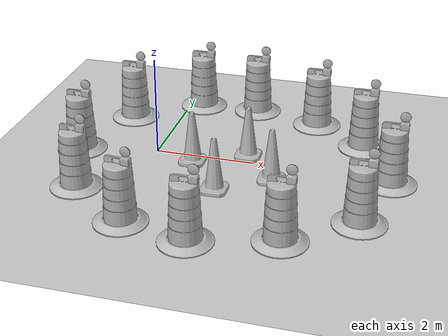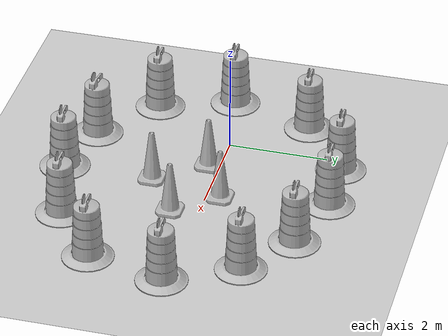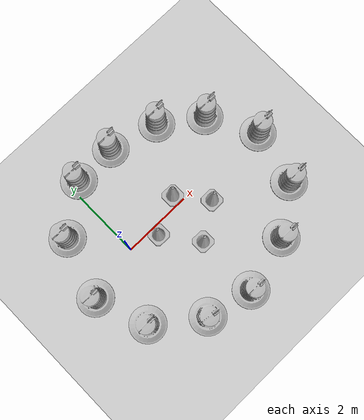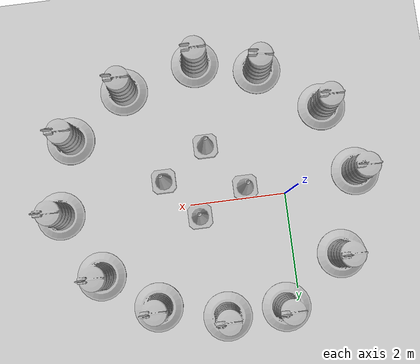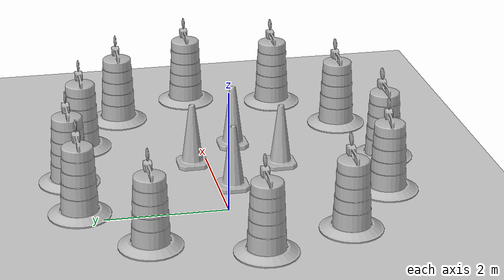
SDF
<sdf version="1.7">
 <world name="default">
  <light name="sun" type="directional">
   <pose>0 0 10 0 -0 0</pose>
   <diffuse>0.8 0.8 0.8 1</diffuse>
   <specular>0.2 0.2 0.2 1</specular>
   <attenuation>
    <range>1000</range>
    <constant>0.9</constant>
    <linear>0.01</linear>
    <quadratic>0.001</quadratic>
   </attenuation>
   <direction>-0.5 0.1 -0.9</direction>
   <spot><inner_angle>0</inner_angle><outer_angle>0</outer_angle><falloff>0</falloff></spot>
  </light>
  <model name="ground_plane">
   <static>1</static>
   <link name="link">
    <collision name="collision">
     <geometry><plane><normal>0 0 1</normal><size>100 100</size></plane></geometry>
     <surface><friction><ode><mu>100</mu><mu2>50</mu2></ode></friction></surface>
    </collision>
    <visual name="visual">
     <cast_shadows>0</cast_shadows>
     <geometry><plane><normal>0 0 1</normal><size>100 100</size></plane></geometry>
     <material>
      <script><uri>file://media/materials/scripts/gazebo.material</uri><name>Gazebo/Grey</name></script>
     </material>
    </visual>
   </link>
  </model>
  <gravity>0 0 -9.8</gravity>
  <magnetic_field>6e-06 2.3e-05 -4.2e-05</magnetic_field>
  <atmosphere type="adiabatic"/>
  <physics type="ode">
   <max_step_size>0.001</max_step_size>
   <real_time_factor>1</real_time_factor>
   <real_time_update_rate>1000</real_time_update_rate>
  </physics>
  <scene><ambient>0.4 0.4 0.4 1</ambient><background>0.7 0.7 0.7 1</background><shadows>1</shadows></scene>
  <audio><device>default</device></audio>
  <spherical_coordinates>
   <surface_model>EARTH_WGS84</surface_model>
   <latitude_deg>0</latitude_deg>
   <longitude_deg>0</longitude_deg>
   <elevation>0</elevation>
   <heading_deg>0</heading_deg>
  </spherical_coordinates>
  <model name="Construction Cone">
   <link name="link">
    <collision name="collision">
     <geometry>
      <mesh><scale>10 10 10</scale><uri>model://construction_cone/meshes/construction_cone.dae</uri></mesh>
     </geometry>
    </collision>
    <visual name="visual">
     <geometry>
      <mesh><scale>10 10 10</scale><uri>model://construction_cone/meshes/construction_cone.dae</uri></mesh>
     </geometry>
    </visual>
    <inertial>
     <inertia><ixx>1</ixx><ixy>0</ixy><ixz>0</ixz><iyy>1</iyy><iyz>0</iyz><izz>1</izz></inertia>
     <mass>1</mass>
    </inertial>
   </link>
   <pose>1.54178 -1.19864 -0 0 -1e-06 0</pose>
  </model>
  <model name="Construction Barrel">
   <link name="link">
    <inertial>
     <pose>0 0 0.4 0 -0 0</pose>
     <mass>500</mass>
     <inertia><ixx>51.2096</ixx><iyy>51.2096</iyy><izz>25</izz><ixy>0</ixy><ixz>0</ixz><iyz>0</iyz></inertia>
    </inertial>
    <collision name="collision">
     <geometry><mesh><uri>model://construction_barrel/meshes/construction_barrel.dae</uri></mesh></geometry>
    </collision>
    <visual name="visual">
     <geometry><mesh><uri>model://construction_barrel/meshes/construction_barrel.dae</uri></mesh></geometry>
    </visual>
   </link>
   <pose>0.288892 2.34849 -0 0 -0 -2.8e-05</pose>
  </model>
  <model name="Construction Barrel_clone">
   <link name="link">
    <inertial>
     <pose>0 0 0.4 0 -0 0</pose>
     <mass>500</mass>
     <inertia><ixx>51.2096</ixx><iyy>51.2096</iyy><izz>25</izz><ixy>0</ixy><ixz>0</ixz><iyz>0</iyz></inertia>
    </inertial>
    <collision name="collision">
     <geometry><mesh><uri>model://construction_barrel/meshes/construction_barrel.dae</uri></mesh></geometry>
    </collision>
    <visual name="visual">
     <geometry><mesh><uri>model://construction_barrel/meshes/construction_barrel.dae</uri></mesh></geometry>
    </visual>
   </link>
   <pose>2.91975 2.02491 -0 0 0 -2.7e-05</pose>
  </model>
  <model name="Construction Barrel_clone_0">
   <link name="link">
    <inertial>
     <pose>0 0 0.4 0 -0 0</pose>
     <mass>500</mass>
     <inertia><ixx>51.2096</ixx><iyy>51.2096</iyy><izz>25</izz><ixy>0</ixy><ixz>0</ixz><iyz>0</iyz></inertia>
    </inertial>
    <collision name="collision">
     <geometry><mesh><uri>model://construction_barrel/meshes/construction_barrel.dae</uri></mesh></geometry>
    </collision>
    <visual name="visual">
     <geometry><mesh><uri>model://construction_barrel/meshes/construction_barrel.dae</uri></mesh></geometry>
    </visual>
   </link>
   <pose>1.52024 2.38968 -0 0 -0 -2.9e-05</pose>
  </model>
  <model name="Construction Barrel_clone_1">
   <link name="link">
    <inertial>
     <pose>0 0 0.4 0 -0 0</pose>
     <mass>500</mass>
     <inertia><ixx>51.2096</ixx><iyy>51.2096</iyy><izz>25</izz><ixy>0</ixy><ixz>0</ixz><iyz>0</iyz></inertia>
    </inertial>
    <collision name="collision">
     <geometry><mesh><uri>model://construction_barrel/meshes/construction_barrel.dae</uri></mesh></geometry>
    </collision>
    <visual name="visual">
     <geometry><mesh><uri>model://construction_barrel/meshes/construction_barrel.dae</uri></mesh></geometry>
    </visual>
   </link>
   <pose>-1.00008 1.40456 -0 0 -0 -3.1e-05</pose>
  </model>
  <model name="Construction Barrel_clone_2">
   <link name="link">
    <inertial>
     <pose>0 0 0.4 0 -0 0</pose>
     <mass>500</mass>
     <inertia><ixx>51.2096</ixx><iyy>51.2096</iyy><izz>25</izz><ixy>0</ixy><ixz>0</ixz><iyz>0</iyz></inertia>
    </inertial>
    <collision name="collision">
     <geometry><mesh><uri>model://construction_barrel/meshes/construction_barrel.dae</uri></mesh></geometry>
    </collision>
    <visual name="visual">
     <geometry><mesh><uri>model://construction_barrel/meshes/construction_barrel.dae</uri></mesh></geometry>
    </visual>
   </link>
   <pose>-1.54291 -0.27972 -0 0 -0 -3.1e-05</pose>
  </model>
  <model name="Construction Barrel_clone_3">
   <link name="link">
    <inertial>
     <pose>0 0 0.4 0 -0 0</pose>
     <mass>500</mass>
     <inertia><ixx>51.2096</ixx><iyy>51.2096</iyy><izz>25</izz><ixy>0</ixy><ixz>0</ixz><iyz>0</iyz></inertia>
    </inertial>
    <collision name="collision">
     <geometry><mesh><uri>model://construction_barrel/meshes/construction_barrel.dae</uri></mesh></geometry>
    </collision>
    <visual name="visual">
     <geometry><mesh><uri>model://construction_barrel/meshes/construction_barrel.dae</uri></mesh></geometry>
    </visual>
   </link>
   <pose>-1.03144 -1.74339 -0 0 -0 -2.9e-05</pose>
  </model>
  <model name="Construction Barrel_clone_4">
   <link name="link">
    <inertial>
     <pose>0 0 0.4 0 -0 0</pose>
     <mass>500</mass>
     <inertia><ixx>51.2096</ixx><iyy>51.2096</iyy><izz>25</izz><ixy>0</ixy><ixz>0</ixz><iyz>0</iyz></inertia>
    </inertial>
    <collision name="collision">
     <geometry><mesh><uri>model://construction_barrel/meshes/construction_barrel.dae</uri></mesh></geometry>
    </collision>
    <visual name="visual">
     <geometry><mesh><uri>model://construction_barrel/meshes/construction_barrel.dae</uri></mesh></geometry>
    </visual>
   </link>
   <pose>0.238309 -2.70086 0 0 0 -0.131399</pose>
  </model>
  <model name="Construction Barrel_clone_5">
   <link name="link">
    <inertial>
     <pose>0 0 0.4 0 -0 0</pose>
     <mass>500</mass>
     <inertia><ixx>51.2096</ixx><iyy>51.2096</iyy><izz>25</izz><ixy>0</ixy><ixz>0</ixz><iyz>0</iyz></inertia>
    </inertial>
    <collision name="collision">
     <geometry><mesh><uri>model://construction_barrel/meshes/construction_barrel.dae</uri></mesh></geometry>
    </collision>
    <visual name="visual">
     <geometry><mesh><uri>model://construction_barrel/meshes/construction_barrel.dae</uri></mesh></geometry>
    </visual>
   </link>
   <pose>1.54563 -3.00158 -2e-06 -7e-06 -4e-06 0.024311</pose>
  </model>
  <model name="Construction Barrel_clone_6">
   <link name="link">
    <inertial>
     <pose>0 0 0.4 0 -0 0</pose>
     <mass>500</mass>
     <inertia><ixx>51.2096</ixx><iyy>51.2096</iyy><izz>25</izz><ixy>0</ixy><ixz>0</ixz><iyz>0</iyz></inertia>
    </inertial>
    <collision name="collision">
     <geometry><mesh><uri>model://construction_barrel/meshes/construction_barrel.dae</uri></mesh></geometry>
    </collision>
    <visual name="visual">
     <geometry><mesh><uri>model://construction_barrel/meshes/construction_barrel.dae</uri></mesh></geometry>
    </visual>
   </link>
   <pose>3.12218 -2.58871 -4e-06 -5e-06 -7e-06 -2.4e-05</pose>
  </model>
  <model name="Construction Barrel_clone_7">
   <link name="link">
    <inertial>
     <pose>0 0 0.4 0 -0 0</pose>
     <mass>500</mass>
     <inertia><ixx>51.2096</ixx><iyy>51.2096</iyy><izz>25</izz><ixy>0</ixy><ixz>0</ixz><iyz>0</iyz></inertia>
    </inertial>
    <collision name="collision">
     <geometry><mesh><uri>model://construction_barrel/meshes/construction_barrel.dae</uri></mesh></geometry>
    </collision>
    <visual name="visual">
     <geometry><mesh><uri>model://construction_barrel/meshes/construction_barrel.dae</uri></mesh></geometry>
    </visual>
   </link>
   <pose>4.3622 -1.67463 -1e-06 4e-06 -1e-06 -2.8e-05</pose>
  </model>
  <model name="Construction Barrel_clone_8">
   <link name="link">
    <inertial>
     <pose>0 0 0.4 0 -0 0</pose>
     <mass>500</mass>
     <inertia><ixx>51.2096</ixx><iyy>51.2096</iyy><izz>25</izz><ixy>0</ixy><ixz>0</ixz><iyz>0</iyz></inertia>
    </inertial>
    <collision name="collision">
     <geometry><mesh><uri>model://construction_barrel/meshes/construction_barrel.dae</uri></mesh></geometry>
    </collision>
    <visual name="visual">
     <geometry><mesh><uri>model://construction_barrel/meshes/construction_barrel.dae</uri></mesh></geometry>
    </visual>
   </link>
   <pose>4.7401 -0.115773 -0 0 0 -3e-05</pose>
  </model>
  <model name="Construction Barrel_clone_9">
   <link name="link">
    <inertial>
     <pose>0 0 0.4 0 -0 0</pose>
     <mass>500</mass>
     <inertia><ixx>51.2096</ixx><iyy>51.2096</iyy><izz>25</izz><ixy>0</ixy><ixz>0</ixz><iyz>0</iyz></inertia>
    </inertial>
    <collision name="collision">
     <geometry><mesh><uri>model://construction_barrel/meshes/construction_barrel.dae</uri></mesh></geometry>
    </collision>
    <visual name="visual">
     <geometry><mesh><uri>model://construction_barrel/meshes/construction_barrel.dae</uri></mesh></geometry>
    </visual>
   </link>
   <pose>4.02273 1.24379 -1e-06 4e-06 -1e-06 -3.1e-05</pose>
  </model>
  <model name="Construction Cone_clone">
   <link name="link">
    <collision name="collision">
     <geometry>
      <mesh><scale>10 10 10</scale><uri>model://construction_cone/meshes/construction_cone.dae</uri></mesh>
     </geometry>
    </collision>
    <visual name="visual">
     <geometry>
      <mesh><scale>10 10 10</scale><uri>model://construction_cone/meshes/construction_cone.dae</uri></mesh>
     </geometry>
    </visual>
    <inertial>
     <inertia><ixx>1</ixx><ixy>0</ixy><ixz>0</ixz><iyy>1</iyy><iyz>0</iyz><izz>1</izz></inertia>
     <mass>1</mass>
    </inertial>
   </link>
   <pose>0.815654 -0.234379 -0 0 -1e-06 0</pose>
  </model>
  <model name="Construction Cone_clone_0">
   <link name="link">
    <collision name="collision">
     <geometry>
      <mesh><scale>10 10 10</scale><uri>model://construction_cone/meshes/construction_cone.dae</uri></mesh>
     </geometry>
    </collision>
    <visual name="visual">
     <geometry>
      <mesh><scale>10 10 10</scale><uri>model://construction_cone/meshes/construction_cone.dae</uri></mesh>
     </geometry>
    </visual>
    <inertial>
     <inertia><ixx>1</ixx><ixy>0</ixy><ixz>0</ixz><iyy>1</iyy><iyz>0</iyz><izz>1</izz></inertia>
     <mass>1</mass>
    </inertial>
   </link>
   <pose>1.83432 0.266999 -0 0 -1e-06 0</pose>
  </model>
  <model name="Construction Cone_clone_1">
   <link name="link">
    <collision name="collision">
     <geometry>
      <mesh><scale>10 10 10</scale><uri>model://construction_cone/meshes/construction_cone.dae</uri></mesh>
     </geometry>
    </collision>
    <visual name="visual">
     <geometry>
      <mesh><scale>10 10 10</scale><uri>model://construction_cone/meshes/construction_cone.dae</uri></mesh>
     </geometry>
    </visual>
    <inertial>
     <inertia><ixx>1</ixx><ixy>0</ixy><ixz>0</ixz><iyy>1</iyy><iyz>0</iyz><izz>1</izz></inertia>
     <mass>1</mass>
    </inertial>
   </link>
   <pose>2.50387 -0.564829 -0 0 1e-06 0</pose>
  </model>
 </world>
</sdf>
